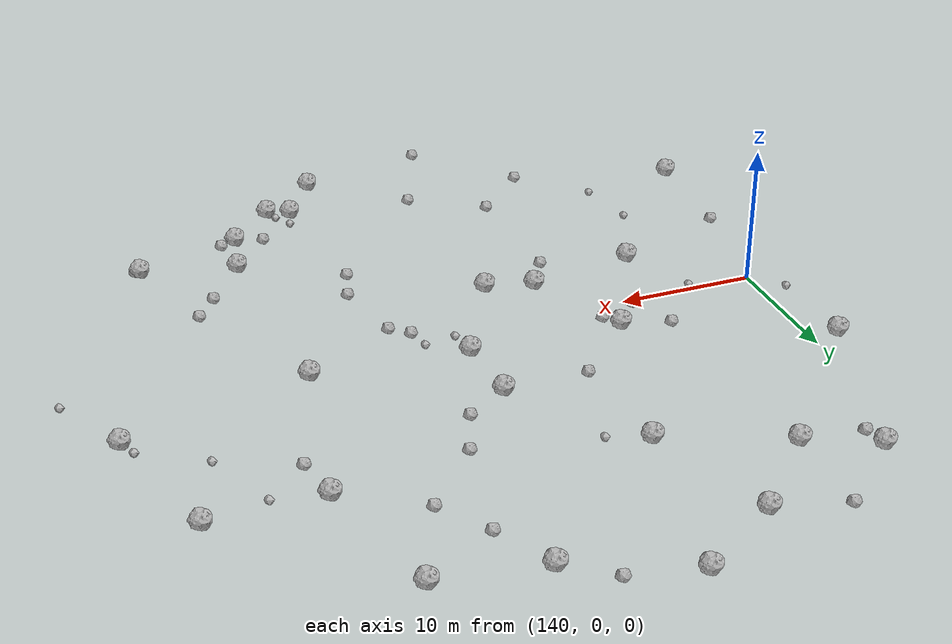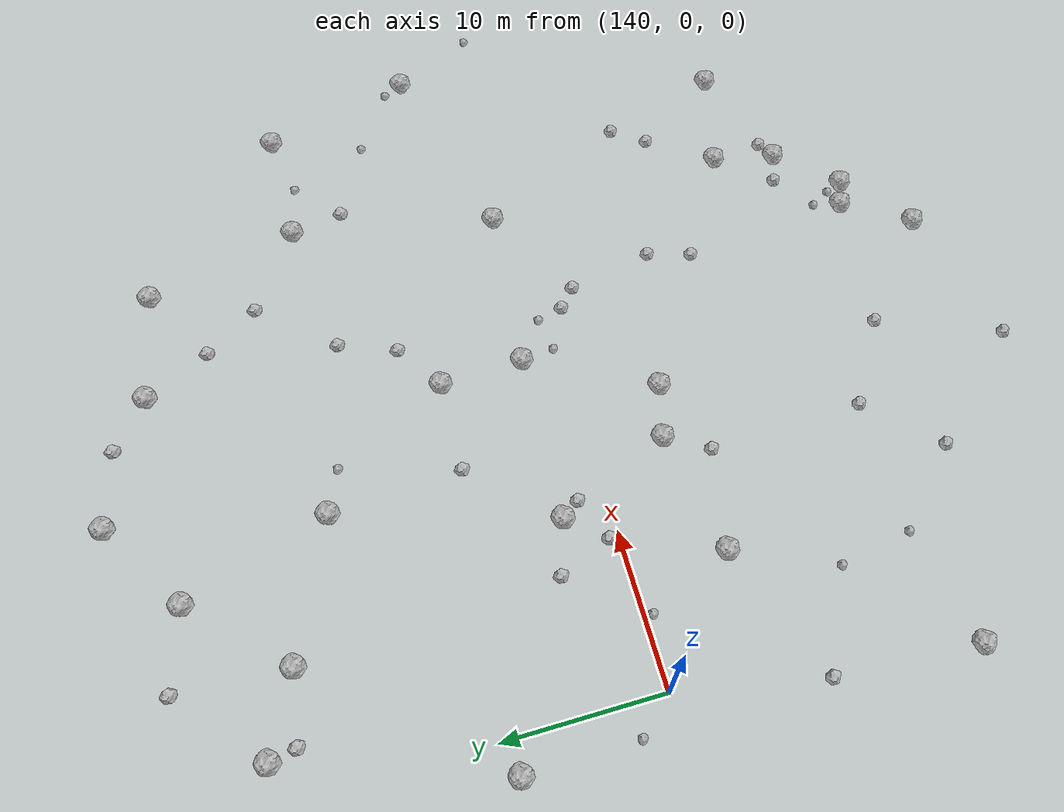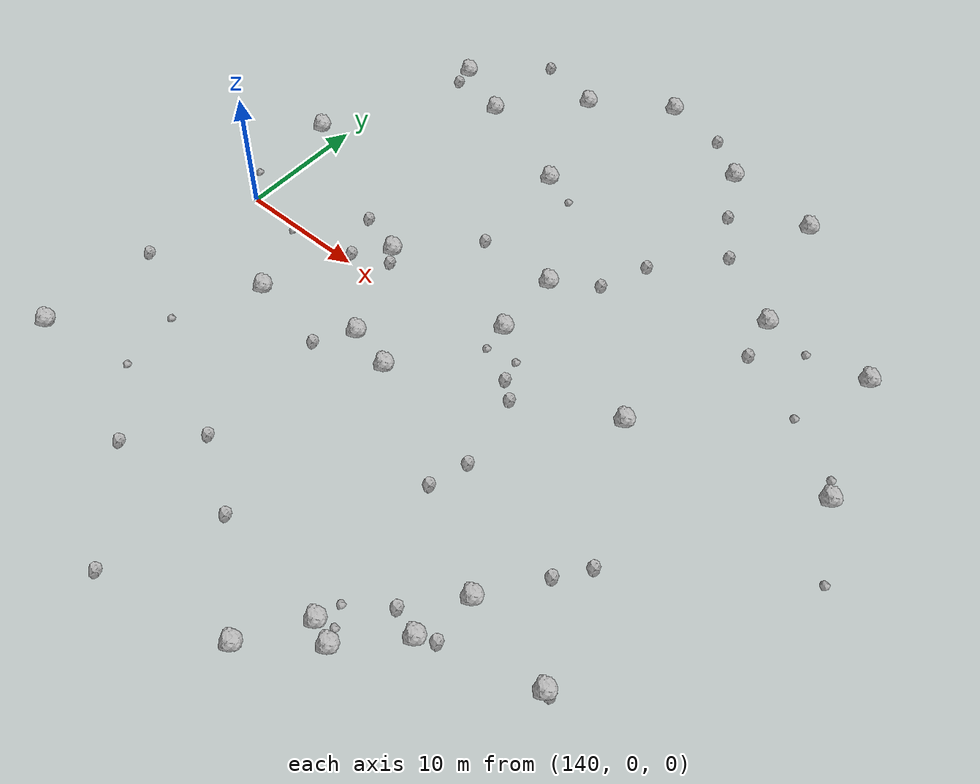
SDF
<sdf version="1.6">
 <world name="default">
  <include><uri>model://sun</uri></include>
  <model name="rock1_4_2">
   <include><uri>model://rock1</uri><pose>155.80513023205214 16.647111355649336 0.5 0 0 0</pose></include>
  </model>
  <model name="rock1_4_3">
   <include><uri>model://rock1</uri><pose>162.4406335432416 8.089273124407164 0.5 0 0 0</pose></include>
  </model>
  <model name="rock1_4_4">
   <include><uri>model://rock1</uri><pose>137.7163084673608 -18.26942140692054 0.5 0 0 0</pose></include>
  </model>
  <model name="rock1_4_5">
   <include><uri>model://rock1</uri><pose>173.79870675753727 1.7854622497016592 0.5 0 0 0</pose></include>
  </model>
  <model name="rock1_4_6">
   <include><uri>model://rock1</uri><pose>170.09612387216745 -22.478406158955924 0.5 0 0 0</pose></include>
  </model>
  <model name="rock1_4_7">
   <include><uri>model://rock1</uri><pose>138.0167268244492 9.206718414810759 0.5 0 0 0</pose></include>
  </model>
  <model name="rock1_4_8">
   <include><uri>model://rock1</uri><pose>168.40883062817585 -21.813039505697077 0.5 0 0 0</pose></include>
  </model>
  <model name="rock1_4_9">
   <include><uri>model://rock1</uri><pose>142.52730306511089 22.422007019882777 0.5 0 0 0</pose></include>
  </model>
  <model name="rock1_4_10">
   <include><uri>model://rock1</uri><pose>152.64808059571683 25.911404432567473 0.5 0 0 0</pose></include>
  </model>
  <model name="rock1_4_11">
   <include><uri>model://rock1</uri><pose>187.2068313931638 5.454209926384124 0.5 0 0 0</pose></include>
  </model>
  <model name="rock1_4_12">
   <include><uri>model://rock1</uri><pose>176.49887527993042 15.314463947522071 0.5 0 0 0</pose></include>
  </model>
  <model name="rock1_4_13">
   <include><uri>model://rock1</uri><pose>155.04713995767636 -4.4692625819894936 0.5 0 0 0</pose></include>
  </model>
  <model name="rock1_4_14">
   <include><uri>model://rock1</uri><pose>173.5653699257182 -18.761016366781973 0.5 0 0 0</pose></include>
  </model>
  <model name="rock1_4_15">
   <include><uri>model://rock1</uri><pose>158.56719541044586 29.873778151640302 0.5 0 0 0</pose></include>
  </model>
  <model name="rock1_4_16">
   <include><uri>model://rock1</uri><pose>147.0219307251712 -5.9290318258993295 0.5 0 0 0</pose></include>
  </model>
  <model name="rock1_4_17">
   <include><uri>model://rock1</uri><pose>184.46003634546778 15.47033296819749 0.5 0 0 0</pose></include>
  </model>
  <model name="rock1_4_18">
   <include><uri>model://rock1</uri><pose>162.69215149126572 2.6422162249103422 0.5 0 0 0</pose></include>
  </model>
  <model name="rock1_4_19">
   <include><uri>model://rock1</uri><pose>158.5406775631311 -5.3649957540408835 0.5 0 0 0</pose></include>
  </model>
  <model name="rock1_4_20">
   <include><uri>model://rock1</uri><pose>174.45493927615647 -14.61777446605495 0.5 0 0 0</pose></include>
  </model>
  <model name="rock1_4_21">
   <include><uri>model://rock1</uri><pose>166.61688863838816 26.428014811204918 0.5 0 0 0</pose></include>
  </model>
  <model name="rock1_4_22">
   <include><uri>model://rock1</uri><pose>147.30208670353778 20.185227990350874 0.5 0 0 0</pose></include>
  </model>
  <model name="rock1_4_23">
   <include><uri>model://rock1</uri><pose>151.61728540669583 2.990991585587956 0.5 0 0 0</pose></include>
  </model>
  <model name="rock1_4_24">
   <include><uri>model://rock1</uri><pose>173.9733171484244 25.344778870726792 0.5 0 0 0</pose></include>
  </model>
  <model name="rock1_4_25">
   <include><uri>model://rock1</uri><pose>165.7296634636715 -26.093003839889764 0.5 0 0 0</pose></include>
  </model>
  <model name="rock1_4_26">
   <include><uri>model://rock1</uri><pose>181.3353532786274 -16.307011766307973 0.5 0 0 0</pose></include>
  </model>
  <model name="rock2_4_0">
   <include><uri>model://rock2</uri><pose>142.8661253187317 20.777913569556993 0.3 0 0 0</pose></include>
  </model>
  <model name="rock2_4_1">
   <include><uri>model://rock2</uri><pose>138.27135285896495 -9.222080316221223 0.3 0 0 0</pose></include>
  </model>
  <model name="rock2_4_2">
   <include><uri>model://rock2</uri><pose>165.6940236114835 -0.8717540288575485 0.3 0 0 0</pose></include>
  </model>
  <model name="rock2_4_3">
   <include><uri>model://rock2</uri><pose>156.34942314262582 8.143419673648232 0.3 0 0 0</pose></include>
  </model>
  <model name="rock2_4_4">
   <include><uri>model://rock2</uri><pose>165.56523320508083 10.259871967098292 0.3 0 0 0</pose></include>
  </model>
  <model name="rock2_4_5">
   <include><uri>model://rock2</uri><pose>159.08419901121792 -20.532417924956498 0.3 0 0 0</pose></include>
  </model>
  <model name="rock2_4_6">
   <include><uri>model://rock2</uri><pose>171.5190520289069 -18.093565316813834 0.3 0 0 0</pose></include>
  </model>
  <model name="rock2_4_7">
   <include><uri>model://rock2</uri><pose>149.63246496508515 0.6563351351588977 0.3 0 0 0</pose></include>
  </model>
  <model name="rock2_4_8">
   <include><uri>model://rock2</uri><pose>149.6993465378299 -21.40526149083402 0.3 0 0 0</pose></include>
  </model>
  <model name="rock2_4_9">
   <include><uri>model://rock2</uri><pose>177.2440956598921 -10.446515530642955 0.3 0 0 0</pose></include>
  </model>
  <model name="rock2_4_10">
   <include><uri>model://rock2</uri><pose>148.1834090203602 4.06761329423388 0.3 0 0 0</pose></include>
  </model>
  <model name="rock2_4_11">
   <include><uri>model://rock2</uri><pose>167.01714056220501 13.96335502049704 0.3 0 0 0</pose></include>
  </model>
  <model name="rock2_4_12">
   <include><uri>model://rock2</uri><pose>167.3042259140722 -10.486862099690146 0.3 0 0 0</pose></include>
  </model>
  <model name="rock2_4_13">
   <include><uri>model://rock2</uri><pose>168.74033944039363 22.239309936401384 0.3 0 0 0</pose></include>
  </model>
  <model name="rock2_4_14">
   <include><uri>model://rock2</uri><pose>168.13031860042113 -7.629790902154529 0.3 0 0 0</pose></include>
  </model>
  <model name="rock2_4_15">
   <include><uri>model://rock2</uri><pose>177.09815124416792 11.850377073207412 0.3 0 0 0</pose></include>
  </model>
  <model name="rock2_4_16">
   <include><uri>model://rock2</uri><pose>181.6525342861454 -16.29143781911928 0.3 0 0 0</pose></include>
  </model>
  <model name="rock2_4_17">
   <include><uri>model://rock2</uri><pose>163.48988158756094 28.83768394800827 0.3 0 0 0</pose></include>
  </model>
  <model name="rock2_4_18">
   <include><uri>model://rock2</uri><pose>156.01036663579671 -28.354322194828345 0.3 0 0 0</pose></include>
  </model>
  <model name="rock2_4_19">
   <include><uri>model://rock2</uri><pose>171.09917315378755 18.756801826075254 0.3 0 0 0</pose></include>
  </model>
  <model name="rock2_4_20">
   <include><uri>model://rock2</uri><pose>174.74046051663908 -18.145349861627555 0.3 0 0 0</pose></include>
  </model>
  <model name="rock2_4_21">
   <include><uri>model://rock2</uri><pose>152.4385108649237 1.8306484388823598 0.3 0 0 0</pose></include>
  </model>
  <model name="rock2_4_22">
   <include><uri>model://rock2</uri><pose>153.7488449048388 -17.231247661365934 0.3 0 0 0</pose></include>
  </model>
  <model name="rock2_4_23">
   <include><uri>model://rock2</uri><pose>166.97802383929127 -1.9865568384243169 0.3 0 0 0</pose></include>
  </model>
  <model name="rock2_4_24">
   <include><uri>model://rock2</uri><pose>153.40935424697696 -7.17557340118114 0.3 0 0 0</pose></include>
  </model>
  <model name="rock2_4_25">
   <include><uri>model://rock2</uri><pose>147.61651427136252 27.27428013888622 0.3 0 0 0</pose></include>
  </model>
  <model name="rock2_4_26">
   <include><uri>model://rock2</uri><pose>178.78931463880477 -8.271829372835505 0.3 0 0 0</pose></include>
  </model>
  <model name="rock3_4_0">
   <include><uri>model://rock3</uri><pose>158.49879864792567 15.532839234734325 0.2 0 0 0</pose></include>
  </model>
  <model name="rock3_4_1">
   <include><uri>model://rock3</uri><pose>189.9589361644769 -0.05160774811496793 0.2 0 0 0</pose></include>
  </model>
  <model name="rock3_4_2">
   <include><uri>model://rock3</uri><pose>144.5306964462368 -0.5279915690372547 0.2 0 0 0</pose></include>
  </model>
  <model name="rock3_4_3">
   <include><uri>model://rock3</uri><pose>162.91390752511637 0.42081281188491815 0.2 0 0 0</pose></include>
  </model>
  <model name="rock3_4_4">
   <include><uri>model://rock3</uri><pose>145.0530863506562 -16.96581327228548 0.2 0 0 0</pose></include>
  </model>
  <model name="rock3_4_5">
   <include><uri>model://rock3</uri><pose>180.02157899510283 14.56636760844475 0.2 0 0 0</pose></include>
  </model>
  <model name="rock3_4_6">
   <include><uri>model://rock3</uri><pose>168.8131816756473 -20.12251555831962 0.2 0 0 0</pose></include>
  </model>
  <model name="rock3_4_7">
   <include><uri>model://rock3</uri><pose>138.0256256908307 2.1765687392366857 0.2 0 0 0</pose></include>
  </model>
  <model name="rock3_4_8">
   <include><uri>model://rock3</uri><pose>165.22446422154854 0.8068745919815079 0.2 0 0 0</pose></include>
  </model>
  <model name="rock3_4_9">
   <include><uri>model://rock3</uri><pose>186.52380145886139 6.734850140590879 0.2 0 0 0</pose></include>
  </model>
  <model name="rock3_4_10">
   <include><uri>model://rock3</uri><pose>144.2112528895025 -12.253269426544545 0.2 0 0 0</pose></include>
  </model>
  <model name="rock3_4_11">
   <include><uri>model://rock3</uri><pose>169.58180916989153 -21.461010096275118 0.2 0 0 0</pose></include>
  </model>
  <model name="rock3_4_12">
   <include><uri>model://rock3</uri><pose>182.2223582615925 9.372731485283914 0.2 0 0 0</pose></include>
  </model>
 </world>
</sdf>
